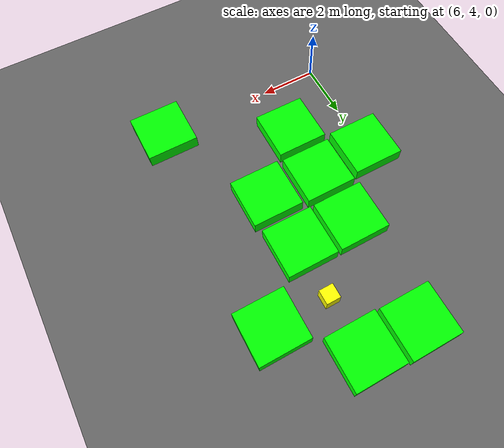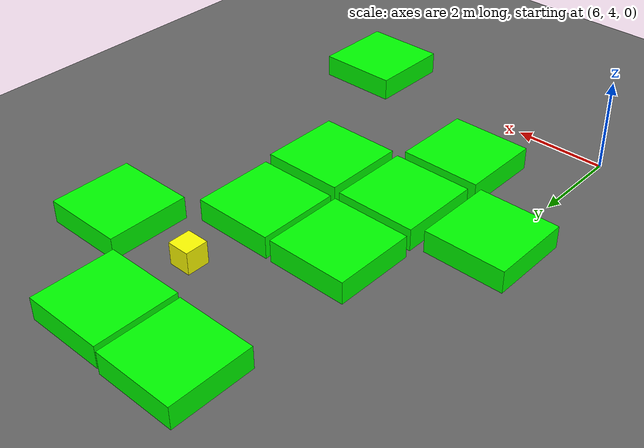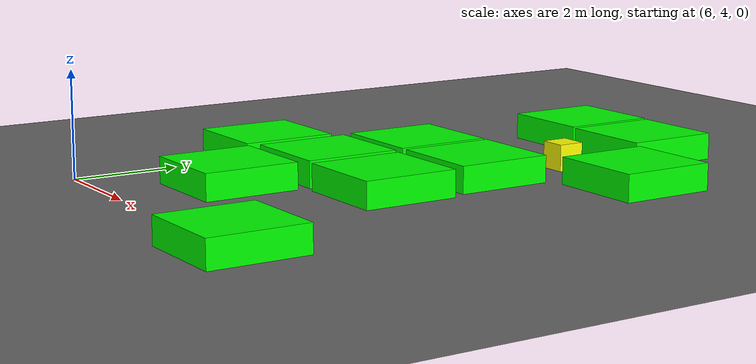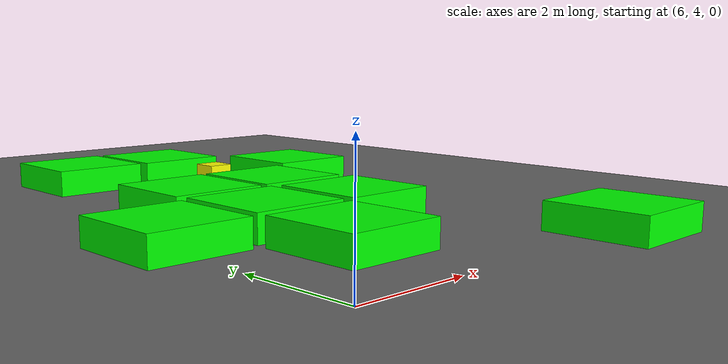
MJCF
<mujoco model="lvl5_deadend_obs10_dlong_depth2_seed42">
    <compiler angle="degree" coordinate="local" inertiafromgeom="true"/>
    <option integrator="RK4" timestep="0.01"/>

    <asset>
        <texture builtin="gradient" height="100" rgb1="0.6 0.8 1" rgb2="0 0 0" type="skybox" width="100"/>
        <texture name="floor_texture" type="2d" builtin="checker" width="100" height="100" rgb1="0 0 0" rgb2="0.8 0.8 0.8"/>
        <material name="MatPlane" reflectance="0.5" shininess="1" specular="1" texrepeat="10 10" texture="floor_texture"/>
    </asset>

    <!-- Excluding the contact between the agent and the goal, and the agent and the floor -->
    <contact>
        <exclude body1="agent" body2="goal"/>
        <exclude body1 = "agent" body2 = "floor"/>
    </contact>

    <extension>
        <plugin plugin = "mujoco.pid">
            <instance name = "pid1">
                <config key="kp" value="2"/>
                <config key="ki" value="0"/>
                <config key="kd" value="55"/>
            </instance>
        </plugin>
    </extension>

    <worldbody>
        <light cutoff="100" diffuse="1 1 1" dir="-0 0 -1.3" directional="true" exponent="1" pos="0 0 1.3" specular=".1 .1 .1"/>
        <body name="floor" pos="0 0 0">
            <geom name="floor_geom" type="plane" size="20 20 0.1" material="MatPlane"/>
        </body>

                <body name="goal" pos="0.0000 0.0000 0">
            <geom name="goal_geom" type="plane" size="0.5 0.5 1" pos="0 0 0" rgba="1 0 0 1"/>
        </body>

                <body name="agent" pos="10.0000 12.0000 0.250">
            <joint name="j1" type="slide" axis ="1 0 0 "/>
            <joint name="j2" type="slide" axis ="0 1 0 "/>
            <geom name="agent_geom" type="box" size="0.25 0.25 0.250" rgba="1 1 0 1"/>
        </body>

        <body name="obstacle1" pos="8.0243 14.0088 0.250">  <geom name="obstacle1_geom" type="box" size="0.9000 0.9000 0.250" rgba="0 1 0 1"/></body>
        <body name="obstacle2" pos="9.9465 13.9563 0.250">  <geom name="obstacle2_geom" type="box" size="0.9000 0.9000 0.250" rgba="0 1 0 1"/></body>
        <body name="obstacle3" pos="12.0228 12.0033 0.250">  <geom name="obstacle3_geom" type="box" size="0.9000 0.9000 0.250" rgba="0 1 0 1"/></body>
        <body name="obstacle4" pos="8.0100 10.0564 0.250">  <geom name="obstacle4_geom" type="box" size="0.9000 0.9000 0.250" rgba="0 1 0 1"/></body>
        <body name="obstacle5" pos="9.9371 10.0515 0.250">  <geom name="obstacle5_geom" type="box" size="0.9000 0.9000 0.250" rgba="0 1 0 1"/></body>
        <body name="obstacle6" pos="6.0708 7.9034 0.250">  <geom name="obstacle6_geom" type="box" size="0.9000 0.9000 0.250" rgba="0 1 0 1"/></body>
        <body name="obstacle7" pos="8.0783 8.0599 0.250">  <geom name="obstacle7_geom" type="box" size="0.9000 0.9000 0.250" rgba="0 1 0 1"/></body>
        <body name="obstacle8" pos="10.0676 7.9937 0.250">  <geom name="obstacle8_geom" type="box" size="0.9000 0.9000 0.250" rgba="0 1 0 1"/></body>
        <body name="obstacle9" pos="8.0463 6.0407 0.250">  <geom name="obstacle9_geom" type="box" size="0.9000 0.9000 0.250" rgba="0 1 0 1"/></body>
        <body name="obstacle10" pos="12.0901 3.9837 0.250">  <geom name="obstacle10_geom" type="box" size="0.9000 0.9000 0.250" rgba="0 1 0 1"/></body>

    </worldbody>

    <sensor>
<!-- SENSORS -->

        <distance name="dist1" geom1="agent_geom" geom2="obstacle1_geom" cutoff="1.5"/>
        <distance name="dist2" geom1="agent_geom" geom2="obstacle2_geom" cutoff="1.5"/>
        <distance name="dist3" geom1="agent_geom" geom2="obstacle3_geom" cutoff="1.5"/>
        <distance name="dist4" geom1="agent_geom" geom2="obstacle4_geom" cutoff="1.5"/>
        <distance name="dist5" geom1="agent_geom" geom2="obstacle5_geom" cutoff="1.5"/>
        <distance name="dist6" geom1="agent_geom" geom2="obstacle6_geom" cutoff="1.5"/>
        <distance name="dist7" geom1="agent_geom" geom2="obstacle7_geom" cutoff="1.5"/>
        <distance name="dist8" geom1="agent_geom" geom2="obstacle8_geom" cutoff="1.5"/>
        <distance name="dist9" geom1="agent_geom" geom2="obstacle9_geom" cutoff="1.5"/>
        <distance name="dist10" geom1="agent_geom" geom2="obstacle10_geom" cutoff="1.5"/>
</sensor>

    <actuator>
        <plugin joint="j1" plugin="mujoco.pid" instance="pid1" />
        <plugin joint="j2" plugin="mujoco.pid" instance="pid1"/>
    </actuator>
</mujoco>
